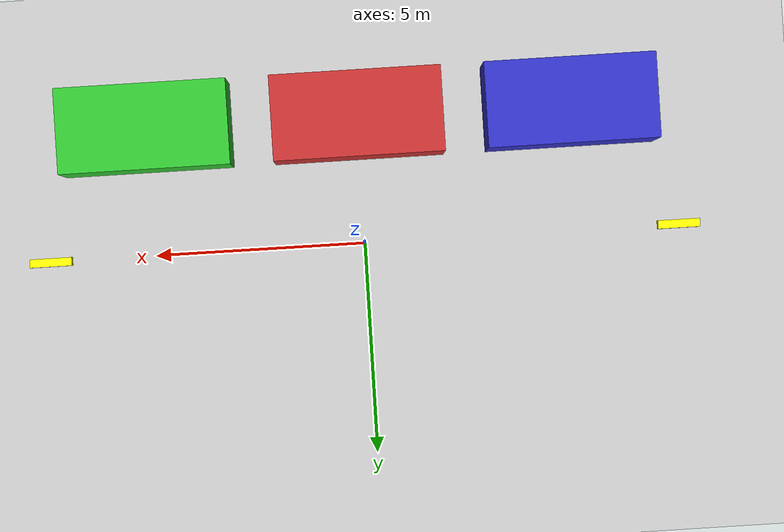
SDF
<?xml version="1.0" ?>
<sdf version="1.6">
  <world name="parking_lot">
    <include>
      <uri>model://sun</uri>
    </include>
    <include>
      <uri>model://ground_plane</uri>
    </include>

    <!-- Parking spaces -->
    <model name="car1">
      <static>true</static>
      <pose>-5 -3 0.75 0 0 0</pose>
      <link name="link">
        <collision name="collision">
          <geometry>
            <box>
              <size>4 2 1.5</size>
            </box>
          </geometry>
        </collision>
        <visual name="visual">
          <geometry>
            <box>
              <size>4 2 1.5</size>
            </box>
          </geometry>
          <material>
            <ambient>0.2 0.2 0.8 1</ambient>
          </material>
        </visual>
      </link>
    </model>

    <model name="car2">
      <static>true</static>
      <pose>0 -3 0.75 0 0 0</pose>
      <link name="link">
        <collision name="collision">
          <geometry>
            <box>
              <size>4 2 1.5</size>
            </box>
          </geometry>
        </collision>
        <visual name="visual">
          <geometry>
            <box>
              <size>4 2 1.5</size>
            </box>
          </geometry>
          <material>
            <ambient>0.8 0.2 0.2 1</ambient>
          </material>
        </visual>
      </link>
    </model>

    <model name="car3">
      <static>true</static>
      <pose>5 -3 0.75 0 0 0</pose>
      <link name="link">
        <collision name="collision">
          <geometry>
            <box>
              <size>4 2 1.5</size>
            </box>
          </geometry>
        </collision>
        <visual name="visual">
          <geometry>
            <box>
              <size>4 2 1.5</size>
            </box>
          </geometry>
          <material>
            <ambient>0.2 0.8 0.2 1</ambient>
          </material>
        </visual>
      </link>
    </model>

    <!-- Parking barriers -->
    <model name="barrier1">
      <static>true</static>
      <pose>-7.5 0 0.1 0 0 0</pose>
      <link name="link">
        <collision name="collision">
          <geometry>
            <box>
              <size>1 0.2 0.2</size>
            </box>
          </geometry>
        </collision>
        <visual name="visual">
          <geometry>
            <box>
              <size>1 0.2 0.2</size>
            </box>
          </geometry>
          <material>
            <ambient>1 1 0 1</ambient>
          </material>
        </visual>
      </link>
    </model>

    <model name="barrier2">
      <static>true</static>
      <pose>7.5 0 0.1 0 0 0</pose>
      <link name="link">
        <collision name="collision">
          <geometry>
            <box>
              <size>1 0.2 0.2</size>
            </box>
          </geometry>
        </collision>
        <visual name="visual">
          <geometry>
            <box>
              <size>1 0.2 0.2</size>
            </box>
          </geometry>
          <material>
            <ambient>1 1 0 1</ambient>
          </material>
        </visual>
      </link>
    </model>

  </world>
</sdf>
